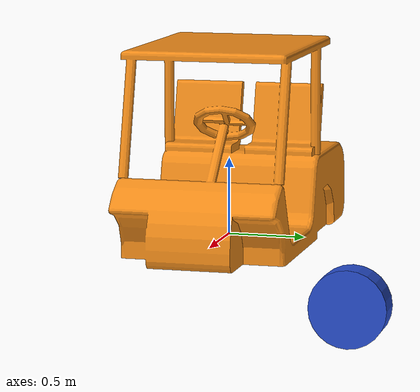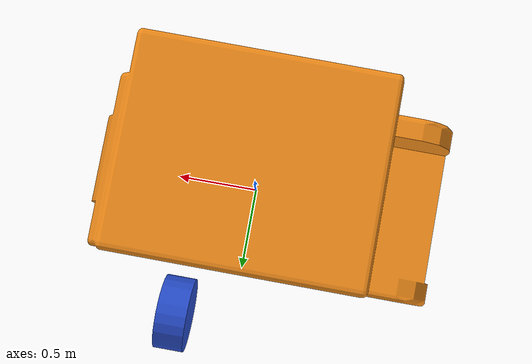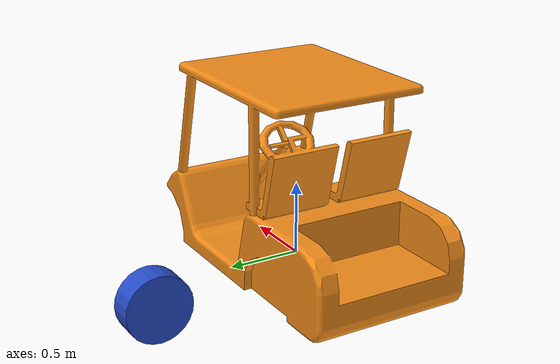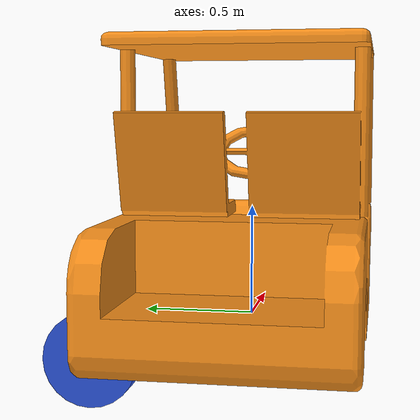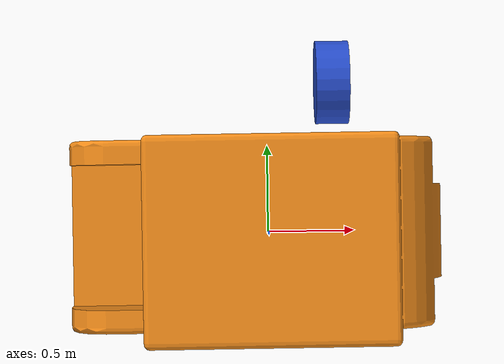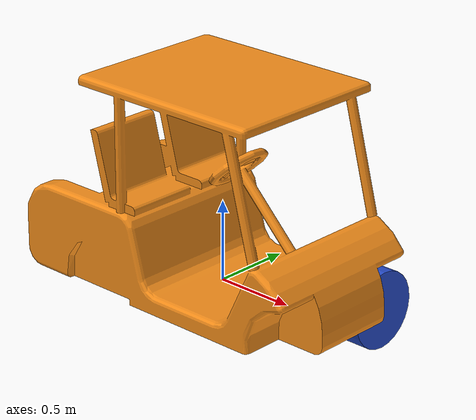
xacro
<?xml version="1.0"?>
<robot name="myfirst" xmlns:xacro="http://www.ros.org/wiki/xacro">

  <!-- Include Color Materials Xacro header -->
  <xacro:include filename="$(find vehicle_description)/urdf/materials.xacro" />
  <xacro:include filename="$(find vehicle_description)/urdf/vehicle.gazebo" />

  <!-- BODY -->
  <link name="base_link">
    <pose>0 0 1 0 0 0</pose>

    <inertial>
      <mass value="5.0"/>
      <origin xyz="0.0 0 0.1" rpy=" 0 0 0"/>
      <inertia
          ixx="0.1" ixy="0" ixz="0"
          iyy="0.1" iyz="0"
          izz="0.1"
      />
    </inertial>
urdf wheel slipping ros
    <collision name='collision'>
      <geometry>
        <mesh filename="package://vehicle_description/meshes/vehicle.dae"/>
        <!--box size="4 2 1.2"/--> <!-- Height of Vehicle must touch floor so wheels have contact with friction on the ground -->
      </geometry>
    </collision>

    <visual name='chassis_visual'>
      <geometry>
        <mesh filename="package://vehicle_description/meshes/vehicle.dae"/>
      </geometry>
    </visual>
  </link>

  <!-- FRONT RIGHT WHEEL -->
  <link name="front_right_wheel">
    <collision name="collision">
      <origin xyz="0 0 0" rpy="0 1.5707 1.5707"/>
      <geometry>
        <cylinder radius="0.2" length="0.2519"/>
      </geometry>
    </collision>

    <visual name="front_right_wheel_visual">
      <origin xyz="0 0 0" rpy="1.5707 0 1.5707"/>
      <geometry>
        <cylinder length="0.2" radius="0.2519"/> <!--actual length 0.2519 / r = 0.4318-->
      </geometry>
      <material name="blue"/>
    </visual>

    <inertial>
      <origin xyz="0 0 0" rpy="0 0 1.5707"/>
      <mass value="5"/>
      <inertia
        ixx=".1" ixy="0.0" ixz="0.0"
        iyy=".1" iyz="0.0"
        izz=".1"/>
    </inertial>
  </link>

  <joint type="continuous" name="front_right_wheel_to_chassis">
    <parent link="base_link"/>
    <child link="front_right_wheel"/>
    <origin rpy="0 0 0" xyz="0.4 0.89 -0.35"/>
    <axis xyz="1 0 0" rpy= "0 1.5707 1.5707" />
    <limit effort="1000" velocity="1000"/>
    <joint_properties damping="1.0" friction="1.0"/>
  </joint>

</robot>
